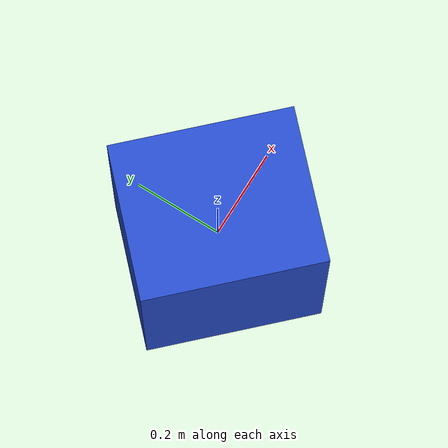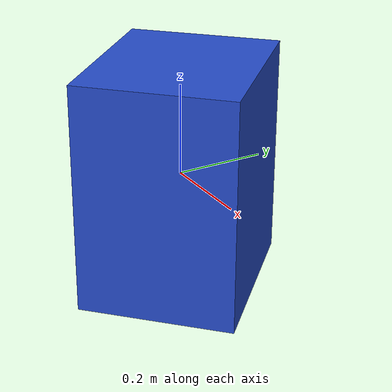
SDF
<sdf version="1.6"><model name="model_2"><link name="link"><pose>0 0 0 0 0 0.7705256926170525</pose><gravity>true</gravity><static>true</static><inertial><mass>1.0</mass><inertia><ixx>0.16666</ixx><ixy>0</ixy><ixz>0</ixz><iyy>0.16666</iyy><iyz>0</iyz><izz>0.16666</izz></inertia></inertial><collision name="collision"><geometry><box><size>0.33761536063050857 0.3969362204811496 0.5</size></box></geometry></collision><visual name="visual"><geometry><box><size>0.33761536063050857 0.3969362204811496 0.5</size></box></geometry><material><script><name>Gazebo/Blue</name><uri>file://media/materials/scripts/gazebo.material</uri></script></material></visual></link></model></sdf>
